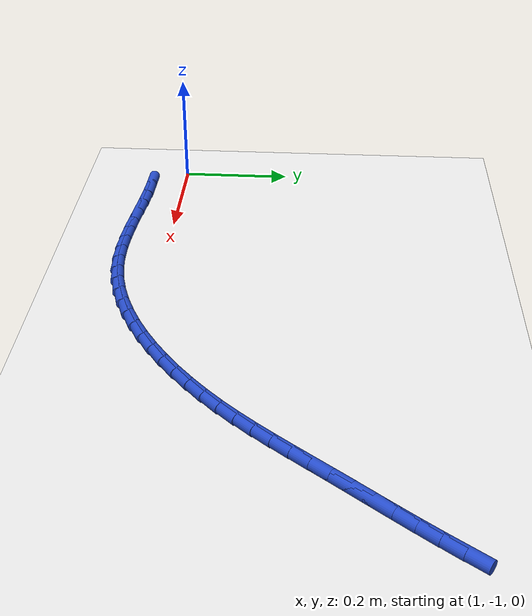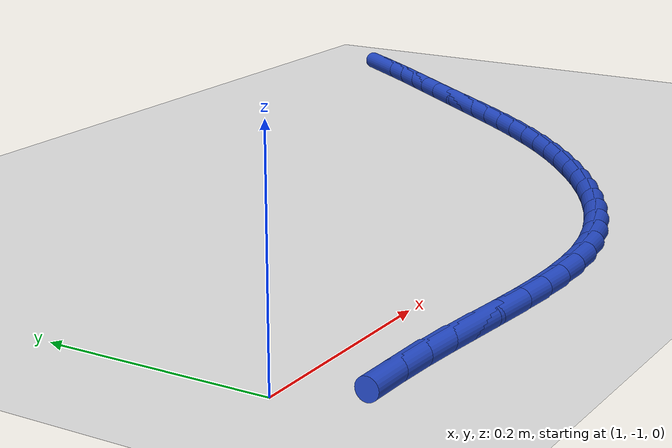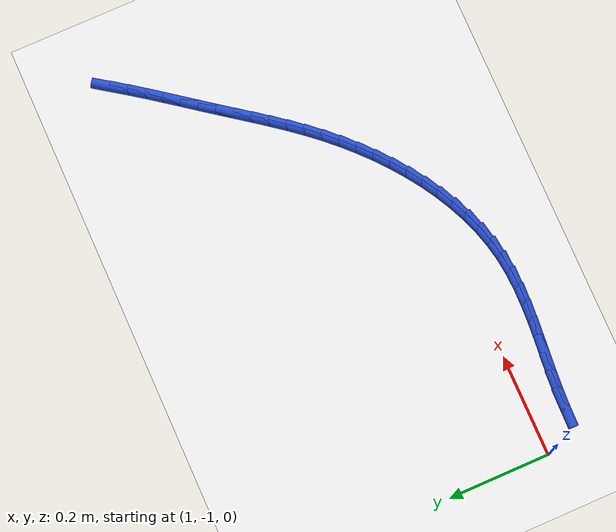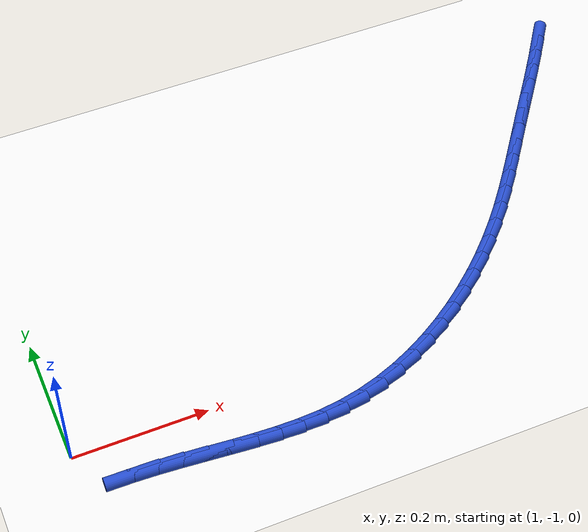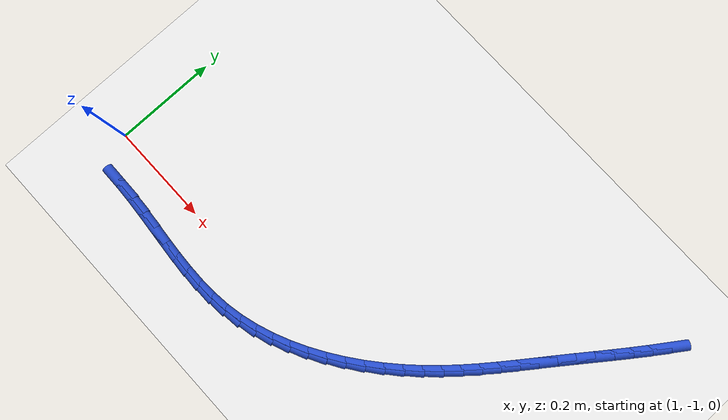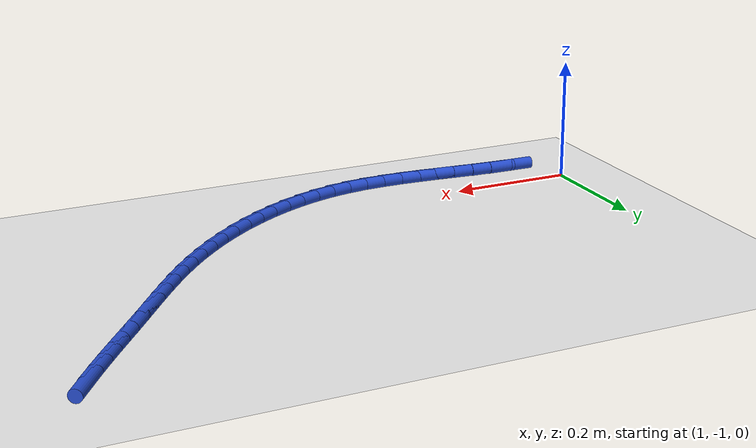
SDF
<sdf version="1.6">
 <world name="default">
  <model name="ground_plane">
   <static>1</static>
   <link name="link">
    <collision name="collision">
     <geometry><plane><normal>0 0 1</normal><size>100 100</size></plane></geometry>
     <surface><friction><ode><mu>100</mu><mu2>50</mu2></ode></friction></surface>
    </collision>
    <visual name="visual">
     <cast_shadows>0</cast_shadows>
     <geometry><plane><normal>0 0 1</normal><size>100 100</size></plane></geometry>
     <material>
      <script><uri>file://media/materials/scripts/gazebo.material</uri><name>Gazebo/WhiteGlow</name></script>
     </material>
    </visual>
   </link>
  </model>
  <model name="line">
   <link name="link_117">
    <pose>1.9609954649347494 -0.5376498311013197 0.01 0 1.57 0.9628683078862114</pose>
    <collision name="collision">
     <geometry><cylinder><radius>0.01</radius><length>0.08</length></cylinder></geometry>
    </collision>
    <visual name="visual">
     <material>
      <script><name>Gazebo/Blue</name><uri>file://media/materials/scripts/gazebo.material</uri></script>
     </material>
     <geometry><cylinder><radius>0.01</radius><length>0.08</length></cylinder></geometry>
    </visual>
   </link>
   <link name="link_118">
    <pose>1.9414169311527008 -0.5657864089118119 0.01 0 1.57 0.9466961092632389</pose>
    <collision name="collision">
     <geometry><cylinder><radius>0.01</radius><length>0.08</length></cylinder></geometry>
    </collision>
    <visual name="visual">
     <material>
      <script><name>Gazebo/Blue</name><uri>file://media/materials/scripts/gazebo.material</uri></script>
     </material>
     <geometry><cylinder><radius>0.01</radius><length>0.08</length></cylinder></geometry>
    </visual>
   </link>
   <link name="link_119">
    <pose>1.9213336031267687 -0.5936753813932124 0.01 0 1.57 0.9353280233209887</pose>
    <collision name="collision">
     <geometry><cylinder><radius>0.01</radius><length>0.08</length></cylinder></geometry>
    </collision>
    <visual name="visual">
     <material>
      <script><name>Gazebo/Blue</name><uri>file://media/materials/scripts/gazebo.material</uri></script>
     </material>
     <geometry><cylinder><radius>0.01</radius><length>0.08</length></cylinder></geometry>
    </visual>
   </link>
   <link name="link_120">
    <pose>1.900920228151396 -0.6213536467537399 0.01 0 1.57 0.9286850696087243</pose>
    <collision name="collision">
     <geometry><cylinder><radius>0.01</radius><length>0.08</length></cylinder></geometry>
    </collision>
    <visual name="visual">
     <material>
      <script><name>Gazebo/Blue</name><uri>file://media/materials/scripts/gazebo.material</uri></script>
     </material>
     <geometry><cylinder><radius>0.01</radius><length>0.08</length></cylinder></geometry>
    </visual>
   </link>
   <link name="link_121">
    <pose>1.880351553521026 -0.6488581032016132 0.01 0 1.57 0.9267443069413818</pose>
    <collision name="collision">
     <geometry><cylinder><radius>0.01</radius><length>0.08</length></cylinder></geometry>
    </collision>
    <visual name="visual">
     <material>
      <script><name>Gazebo/Blue</name><uri>file://media/materials/scripts/gazebo.material</uri></script>
     </material>
     <geometry><cylinder><radius>0.01</radius><length>0.08</length></cylinder></geometry>
    </visual>
   </link>
   <link name="link_122">
    <pose>1.859802326530101 -0.6762256489450506 0.01 0 1.57 0.9295424416372083</pose>
    <collision name="collision">
     <geometry><cylinder><radius>0.01</radius><length>0.08</length></cylinder></geometry>
    </collision>
    <visual name="visual">
     <material>
      <script><name>Gazebo/Blue</name><uri>file://media/materials/scripts/gazebo.material</uri></script>
     </material>
     <geometry><cylinder><radius>0.01</radius><length>0.08</length></cylinder></geometry>
    </visual>
   </link>
   <link name="link_123">
    <pose>1.8394472657735872 -0.703493174178154 0.01 0 1.57 0.9346402688165303</pose>
    <collision name="collision">
     <geometry><cylinder><radius>0.01</radius><length>0.08</length></cylinder></geometry>
    </collision>
    <visual name="visual">
     <material>
      <script><name>Gazebo/Blue</name><uri>file://media/materials/scripts/gazebo.material</uri></script>
     </material>
     <geometry><cylinder><radius>0.01</radius><length>0.08</length></cylinder></geometry>
    </visual>
   </link>
   <link name="link_124">
    <pose>1.819372708016591 -0.7306728891227494 0.01 0 1.57 0.9338941772801003</pose>
    <collision name="collision">
     <geometry><cylinder><radius>0.01</radius><length>0.08</length></cylinder></geometry>
    </collision>
    <visual name="visual">
     <material>
      <script><name>Gazebo/Blue</name><uri>file://media/materials/scripts/gazebo.material</uri></script>
     </material>
     <geometry><cylinder><radius>0.01</radius><length>0.08</length></cylinder></geometry>
    </visual>
   </link>
   <link name="link_125">
    <pose>1.7993813145942368 -0.7576977897350331 0.01 0 1.57 0.925578382211421</pose>
    <collision name="collision">
     <geometry><cylinder><radius>0.01</radius><length>0.08</length></cylinder></geometry>
    </collision>
    <visual name="visual">
     <material>
      <script><name>Gazebo/Blue</name><uri>file://media/materials/scripts/gazebo.material</uri></script>
     </material>
     <geometry><cylinder><radius>0.01</radius><length>0.08</length></cylinder></geometry>
    </visual>
   </link>
   <link name="link_126">
    <pose>1.7792189475644364 -0.7844850111931532 0.01 0 1.57 0.9096993672831751</pose>
    <collision name="collision">
     <geometry><cylinder><radius>0.01</radius><length>0.08</length></cylinder></geometry>
    </collision>
    <visual name="visual">
     <material>
      <script><name>Gazebo/Blue</name><uri>file://media/materials/scripts/gazebo.material</uri></script>
     </material>
     <geometry><cylinder><radius>0.01</radius><length>0.08</length></cylinder></geometry>
    </visual>
   </link>
   <link name="link_127">
    <pose>1.7586314689851015 -0.8109516886752571 0.01 0 1.57 0.8863958550942987</pose>
    <collision name="collision">
     <geometry><cylinder><radius>0.01</radius><length>0.08</length></cylinder></geometry>
    </collision>
    <visual name="visual">
     <material>
      <script><name>Gazebo/Blue</name><uri>file://media/materials/scripts/gazebo.material</uri></script>
     </material>
     <geometry><cylinder><radius>0.01</radius><length>0.08</length></cylinder></geometry>
    </visual>
   </link>
   <link name="link_128">
    <pose>1.7373647409141426 -0.8370149573594926 0.01 0 1.57 0.8559606793533551</pose>
    <collision name="collision">
     <geometry><cylinder><radius>0.01</radius><length>0.08</length></cylinder></geometry>
    </collision>
    <visual name="visual">
     <material>
      <script><name>Gazebo/Blue</name><uri>file://media/materials/scripts/gazebo.material</uri></script>
     </material>
     <geometry><cylinder><radius>0.01</radius><length>0.08</length></cylinder></geometry>
    </visual>
   </link>
   <link name="link_129">
    <pose>1.7151646254094715 -0.8625919524240077 0.01 0 1.57 0.819044692182336</pose>
    <collision name="collision">
     <geometry><cylinder><radius>0.01</radius><length>0.08</length></cylinder></geometry>
    </collision>
    <visual name="visual">
     <material>
      <script><name>Gazebo/Blue</name><uri>file://media/materials/scripts/gazebo.material</uri></script>
     </material>
     <geometry><cylinder><radius>0.01</radius><length>0.08</length></cylinder></geometry>
    </visual>
   </link>
   <link name="link_130">
    <pose>1.6917891663888087 -0.8875958224814944 0.01 0 1.57 0.7787091186692026</pose>
    <collision name="collision">
     <geometry><cylinder><radius>0.01</radius><length>0.08</length></cylinder></geometry>
    </collision>
    <visual name="visual">
     <material>
      <script><name>Gazebo/Blue</name><uri>file://media/materials/scripts/gazebo.material</uri></script>
     </material>
     <geometry><cylinder><radius>0.01</radius><length>0.08</length></cylinder></geometry>
    </visual>
   </link>
   <link name="link_131">
    <pose>1.6671774420572634 -0.9118804719037976 0.01 0 1.57 0.7366771055397238</pose>
    <collision name="collision">
     <geometry><cylinder><radius>0.01</radius><length>0.08</length></cylinder></geometry>
    </collision>
    <visual name="visual">
     <material>
      <script><name>Gazebo/Blue</name><uri>file://media/materials/scripts/gazebo.material</uri></script>
     </material>
     <geometry><cylinder><radius>0.01</radius><length>0.08</length></cylinder></geometry>
    </visual>
   </link>
   <link name="link_132">
    <pose>1.641407258455433 -0.9352544057883136 0.01 0 1.57 0.6924877824764858</pose>
    <collision name="collision">
     <geometry><cylinder><radius>0.01</radius><length>0.08</length></cylinder></geometry>
    </collision>
    <visual name="visual">
     <material>
      <script><name>Gazebo/Blue</name><uri>file://media/materials/scripts/gazebo.material</uri></script>
     </material>
     <geometry><cylinder><radius>0.01</radius><length>0.08</length></cylinder></geometry>
    </visual>
   </link>
   <link name="link_133">
    <pose>1.6145599538298905 -0.9575249733030047 0.01 0 1.57 0.6456178440659723</pose>
    <collision name="collision">
     <geometry><cylinder><radius>0.01</radius><length>0.08</length></cylinder></geometry>
    </collision>
    <visual name="visual">
     <material>
      <script><name>Gazebo/Blue</name><uri>file://media/materials/scripts/gazebo.material</uri></script>
     </material>
     <geometry><cylinder><radius>0.01</radius><length>0.08</length></cylinder></geometry>
    </visual>
   </link>
   <link name="link_134">
    <pose>1.5867168664272098 -0.9784995236158327 0.01 0 1.57 0.59552841287144</pose>
    <collision name="collision">
     <geometry><cylinder><radius>0.01</radius><length>0.08</length></cylinder></geometry>
    </collision>
    <visual name="visual">
     <material>
      <script><name>Gazebo/Blue</name><uri>file://media/materials/scripts/gazebo.material</uri></script>
     </material>
     <geometry><cylinder><radius>0.01</radius><length>0.08</length></cylinder></geometry>
    </visual>
   </link>
   <link name="link_135">
    <pose>1.557959334493963 -0.9979854058947591 0.01 0 1.57 0.5416654960456593</pose>
    <collision name="collision">
     <geometry><cylinder><radius>0.01</radius><length>0.08</length></cylinder></geometry>
    </collision>
    <visual name="visual">
     <material>
      <script><name>Gazebo/Blue</name><uri>file://media/materials/scripts/gazebo.material</uri></script>
     </material>
     <geometry><cylinder><radius>0.01</radius><length>0.08</length></cylinder></geometry>
    </visual>
   </link>
   <link name="link_136">
    <pose>1.5283686962767227 -1.0157899693077461 0.01 0 1.57 0.4834684564320993</pose>
    <collision name="collision">
     <geometry><cylinder><radius>0.01</radius><length>0.08</length></cylinder></geometry>
    </collision>
    <visual name="visual">
     <material>
      <script><name>Gazebo/Blue</name><uri>file://media/materials/scripts/gazebo.material</uri></script>
     </material>
     <geometry><cylinder><radius>0.01</radius><length>0.08</length></cylinder></geometry>
    </visual>
   </link>
   <link name="link_137">
    <pose>1.498026290022063 -1.031720563022756 0.01 0 1.57 0.4203895275421648</pose>
    <collision name="collision">
     <geometry><cylinder><radius>0.01</radius><length>0.08</length></cylinder></geometry>
    </collision>
    <visual name="visual">
     <material>
      <script><name>Gazebo/Blue</name><uri>file://media/materials/scripts/gazebo.material</uri></script>
     </material>
     <geometry><cylinder><radius>0.01</radius><length>0.08</length></cylinder></geometry>
    </visual>
   </link>
   <link name="link_138">
    <pose>1.4670134539765545 -1.0455845362077494 0.01 0 1.57 0.35192805750270084</pose>
    <collision name="collision">
     <geometry><cylinder><radius>0.01</radius><length>0.08</length></cylinder></geometry>
    </collision>
    <visual name="visual">
     <material>
      <script><name>Gazebo/Blue</name><uri>file://media/materials/scripts/gazebo.material</uri></script>
     </material>
     <geometry><cylinder><radius>0.01</radius><length>0.08</length></cylinder></geometry>
    </visual>
   </link>
   <link name="link_139">
    <pose>1.4354115263867717 -1.057189238030689 0.01 0 1.57 0.2776829547503795</pose>
    <collision name="collision">
     <geometry><cylinder><radius>0.01</radius><length>0.08</length></cylinder></geometry>
    </collision>
    <visual name="visual">
     <material>
      <script><name>Gazebo/Blue</name><uri>file://media/materials/scripts/gazebo.material</uri></script>
     </material>
     <geometry><cylinder><radius>0.01</radius><length>0.08</length></cylinder></geometry>
    </visual>
   </link>
   <link name="link_140">
    <pose>1.4033018454992872 -1.066342017659537 0.01 0 1.57 0.19742556927257515</pose>
    <collision name="collision">
     <geometry><cylinder><radius>0.01</radius><length>0.08</length></cylinder></geometry>
    </collision>
    <visual name="visual">
     <material>
      <script><name>Gazebo/Blue</name><uri>file://media/materials/scripts/gazebo.material</uri></script>
     </material>
     <geometry><cylinder><radius>0.01</radius><length>0.08</length></cylinder></geometry>
    </visual>
   </link>
   <link name="link_141">
    <pose>1.3707657479770126 -1.0728502526151704 0.01 0 1.57 0.11515887408591056</pose>
    <collision name="collision">
     <geometry><cylinder><radius>0.01</radius><length>0.08</length></cylinder></geometry>
    </collision>
    <visual name="visual">
     <material>
      <script><name>Gazebo/Blue</name><uri>file://media/materials/scripts/gazebo.material</uri></script>
     </material>
     <geometry><cylinder><radius>0.01</radius><length>0.08</length></cylinder></geometry>
    </visual>
   </link>
   <link name="link_142">
    <pose>1.3378771316763738 -1.0766545002860497 0.01 0 1.57 0.04460487231114249</pose>
    <collision name="collision">
     <geometry><cylinder><radius>0.01</radius><length>0.08</length></cylinder></geometry>
    </collision>
    <visual name="visual">
     <material>
      <script><name>Gazebo/Blue</name><uri>file://media/materials/scripts/gazebo.material</uri></script>
     </material>
     <geometry><cylinder><radius>0.01</radius><length>0.08</length></cylinder></geometry>
    </visual>
   </link>
   <link name="link_143">
    <pose>1.3046852799452267 -1.0781360012534265 0.01 0 1.57 -0.011030045956284944</pose>
    <collision name="collision">
     <geometry><cylinder><radius>0.01</radius><length>0.08</length></cylinder></geometry>
    </collision>
    <visual name="visual">
     <material>
      <script><name>Gazebo/Blue</name><uri>file://media/materials/scripts/gazebo.material</uri></script>
     </material>
     <geometry><cylinder><radius>0.01</radius><length>0.08</length></cylinder></geometry>
    </visual>
   </link>
   <link name="link_144">
    <pose>1.2712343918792857 -1.0777670214570632 0.01 0 1.57 -0.05185180127736428</pose>
    <collision name="collision">
     <geometry><cylinder><radius>0.01</radius><length>0.08</length></cylinder></geometry>
    </collision>
    <visual name="visual">
     <material>
      <script><name>Gazebo/Blue</name><uri>file://media/materials/scripts/gazebo.material</uri></script>
     </material>
     <geometry><cylinder><radius>0.01</radius><length>0.08</length></cylinder></geometry>
    </visual>
   </link>
   <link name="link_145">
    <pose>1.2375686665742638 -1.076019826836722 0.01 0 1.57 -0.07825090454437997</pose>
    <collision name="collision">
     <geometry><cylinder><radius>0.01</radius><length>0.08</length></cylinder></geometry>
    </collision>
    <visual name="visual">
     <material>
      <script><name>Gazebo/Blue</name><uri>file://media/materials/scripts/gazebo.material</uri></script>
     </material>
     <geometry><cylinder><radius>0.01</radius><length>0.08</length></cylinder></geometry>
    </visual>
   </link>
   <link name="link_146">
    <pose>1.203732303125875 -1.0733666833321647 0.01 0 1.57 -0.09063941463794892</pose>
    <collision name="collision">
     <geometry><cylinder><radius>0.01</radius><length>0.08</length></cylinder></geometry>
    </collision>
    <visual name="visual">
     <material>
      <script><name>Gazebo/Blue</name><uri>file://media/materials/scripts/gazebo.material</uri></script>
     </material>
     <geometry><cylinder><radius>0.01</radius><length>0.08</length></cylinder></geometry>
    </visual>
   </link>
   <link name="link_147">
    <pose>1.1697695006298328 -1.070279856883154 0.01 0 1.57 -0.08929749094074171</pose>
    <collision name="collision">
     <geometry><cylinder><radius>0.01</radius><length>0.08</length></cylinder></geometry>
    </collision>
    <visual name="visual">
     <material>
      <script><name>Gazebo/Blue</name><uri>file://media/materials/scripts/gazebo.material</uri></script>
     </material>
     <geometry><cylinder><radius>0.01</radius><length>0.08</length></cylinder></geometry>
    </visual>
   </link>
   <link name="link_148">
    <pose>1.1357244581818502 -1.0672316134294513 0.01 0 1.57 -0.07431024557206509</pose>
    <collision name="collision">
     <geometry><cylinder><radius>0.01</radius><length>0.08</length></cylinder></geometry>
    </collision>
    <visual name="visual">
     <material>
      <script><name>Gazebo/Blue</name><uri>file://media/materials/scripts/gazebo.material</uri></script>
     </material>
     <geometry><cylinder><radius>0.01</radius><length>0.08</length></cylinder></geometry>
    </visual>
   </link>
   <link name="link_149">
    <pose>1.1016413748776412 -1.0646942189108188 0.01 0 1.57 -0.046191811139120714</pose>
    <collision name="collision">
     <geometry><cylinder><radius>0.01</radius><length>0.08</length></cylinder></geometry>
    </collision>
    <visual name="visual">
     <material>
      <script><name>Gazebo/Blue</name><uri>file://media/materials/scripts/gazebo.material</uri></script>
     </material>
     <geometry><cylinder><radius>0.01</radius><length>0.08</length></cylinder></geometry>
    </visual>
   </link>
   <link name="link_150">
    <pose>1.0675638486762737 -1.0631189957545322 0.01 0 1.57 -0.016847743861832843</pose>
    <collision name="collision">
     <geometry><cylinder><radius>0.01</radius><length>0.08</length></cylinder></geometry>
    </collision>
    <visual name="visual">
     <material>
      <script><name>Gazebo/Blue</name><uri>file://media/materials/scripts/gazebo.material</uri></script>
     </material>
     <geometry><cylinder><radius>0.01</radius><length>0.08</length></cylinder></geometry>
    </visual>
   </link>
  </model>
 </world>
</sdf>
